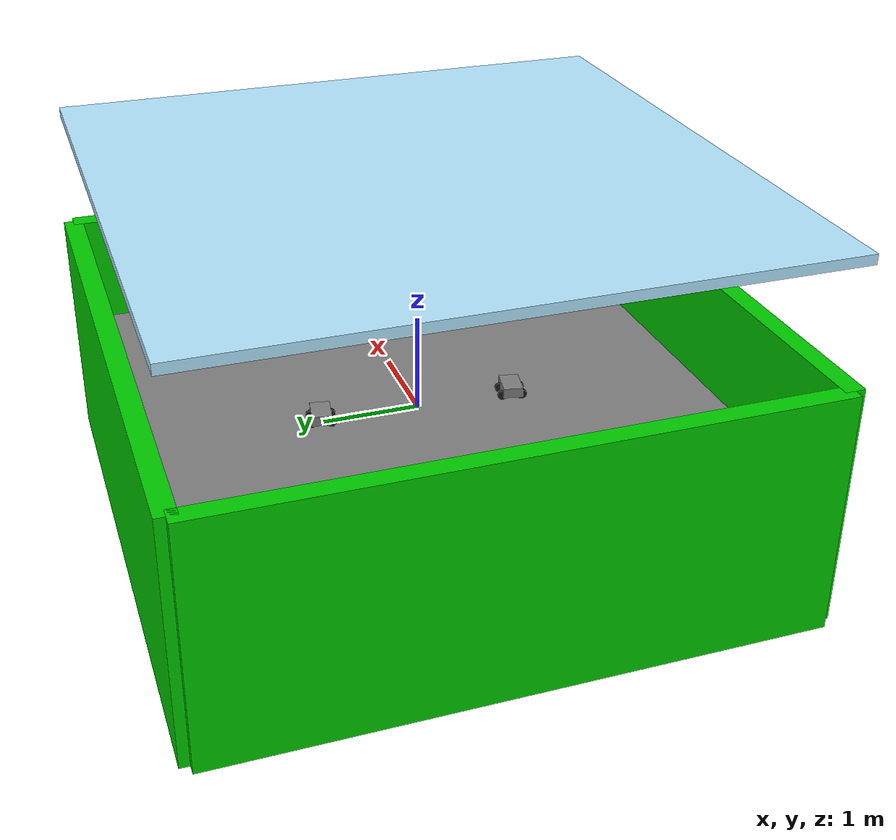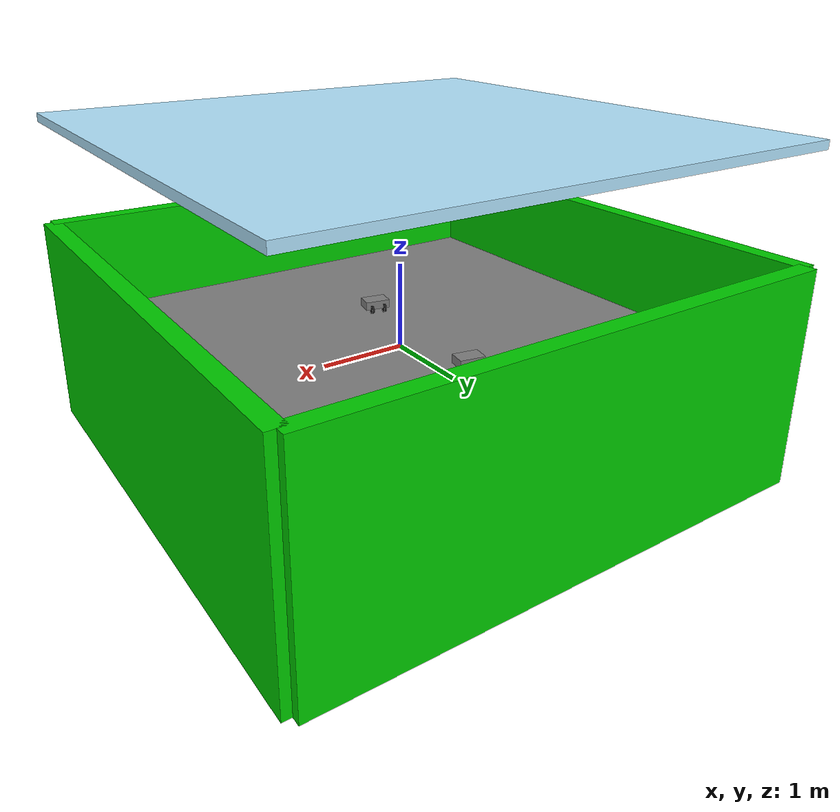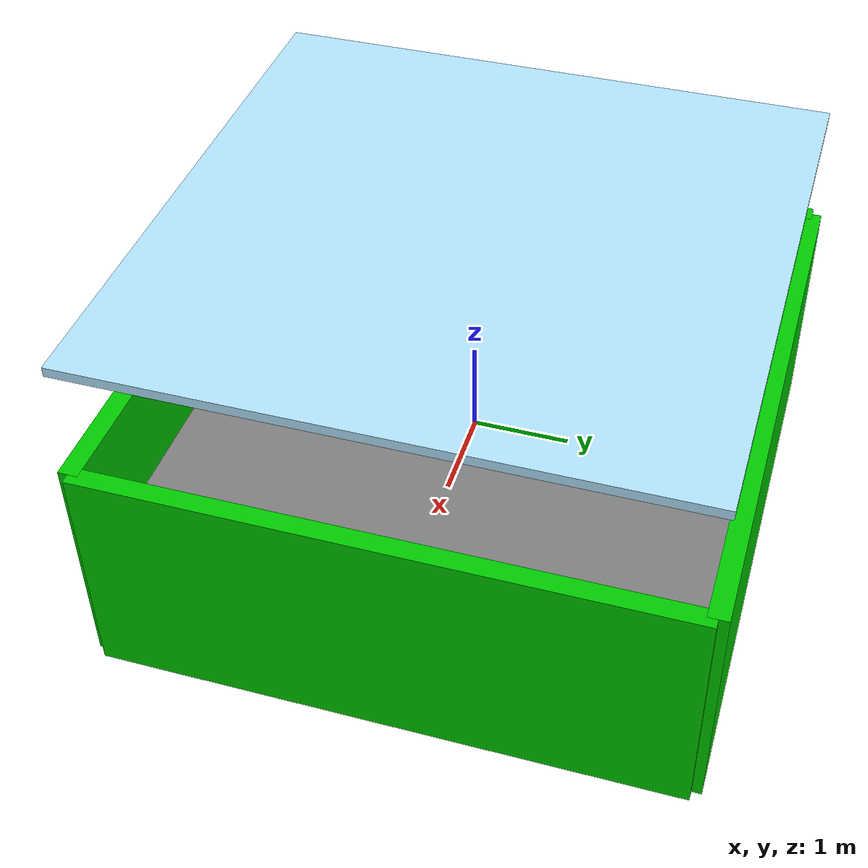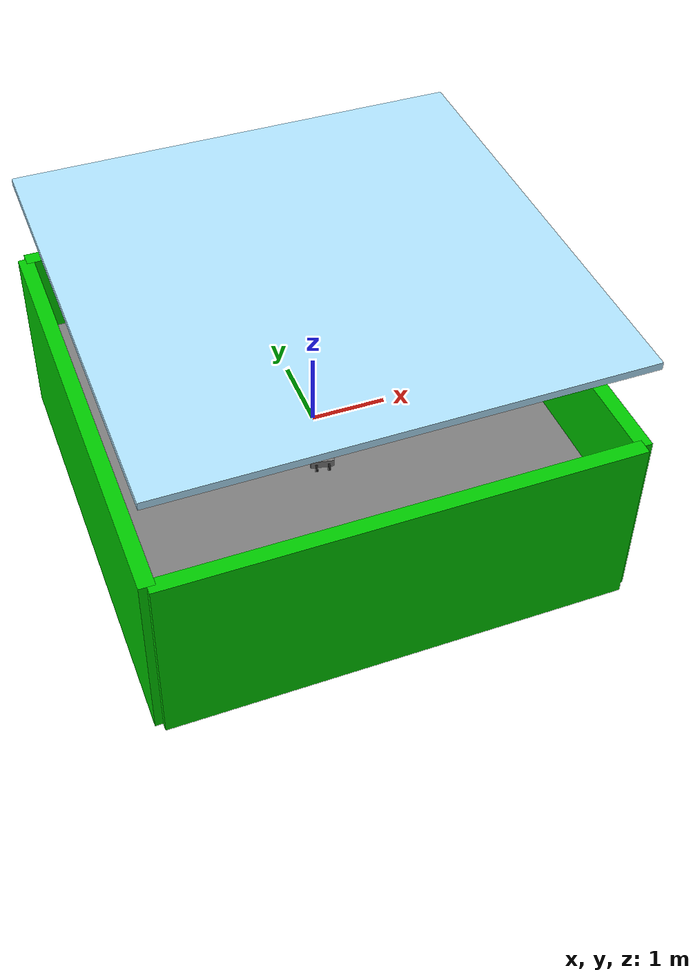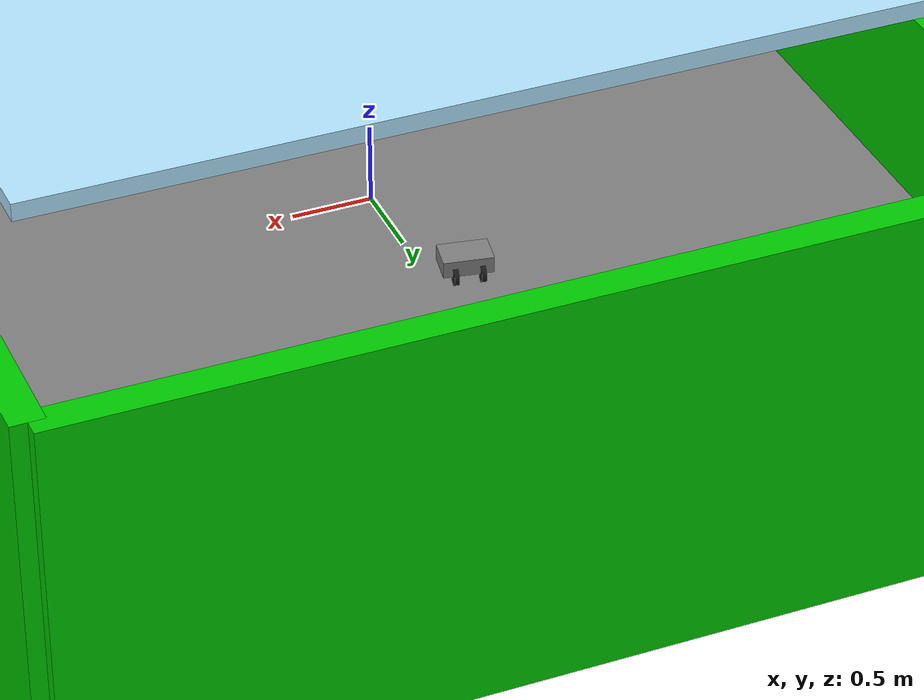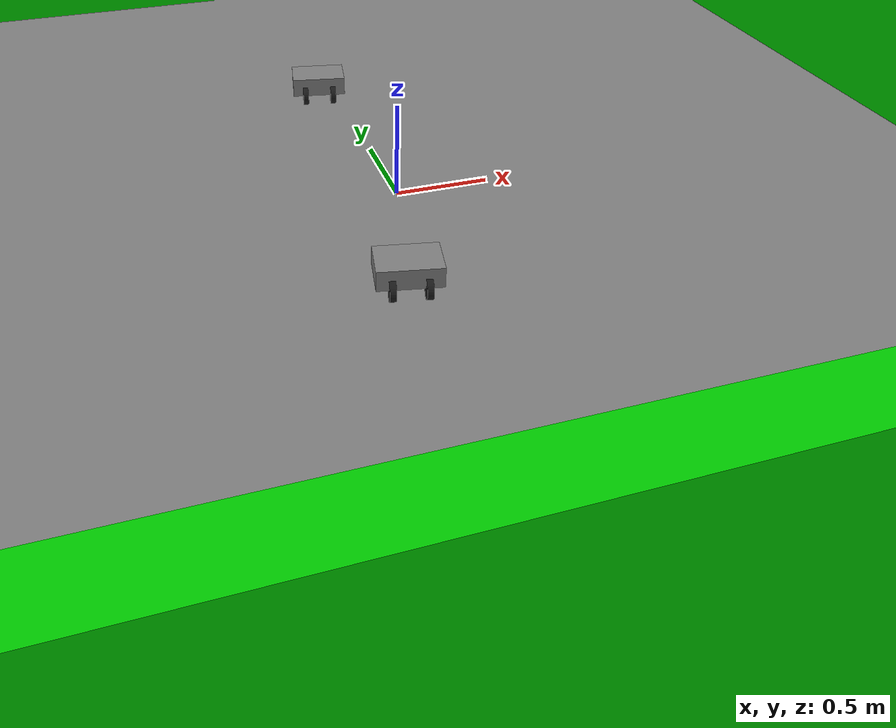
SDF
<sdf version="1.7">
 <world name="myworld">
  <model name="greenhouse">
   <frame name="greenhouse::__model__" attached_to="greenhouse::front_wall">
    <pose relative_to="__model__">0 0 0 0 -0 0</pose>
   </frame>
   <static>1</static>
   <link name="greenhouse::front_wall">
    <pose relative_to="greenhouse::__model__">0 -3 0 0 -0 0</pose>
    <collision name="front_wall_collision"><geometry><box><size>6 0.2 2.5</size></box></geometry></collision>
    <visual name="front_wall_visual">
     <geometry><box><size>6 0.2 2.5</size></box></geometry>
     <material>
      <ambient>0 0.8 0 1</ambient>
      <diffuse>0 0.8 0 1</diffuse>
      <specular>0.1 0.1 0.1 1</specular>
     </material>
    </visual>
   </link>
   <link name="greenhouse::back_wall">
    <pose relative_to="greenhouse::__model__">0 3 0 0 -0 0</pose>
    <collision name="back_wall_collision"><geometry><box><size>6 0.2 2.5</size></box></geometry></collision>
    <visual name="back_wall_visual">
     <geometry><box><size>6 0.2 2.5</size></box></geometry>
     <material>
      <ambient>0 0.8 0 1</ambient>
      <diffuse>0 0.8 0 1</diffuse>
      <specular>0.1 0.1 0.1 1</specular>
     </material>
    </visual>
   </link>
   <link name="greenhouse::left_wall">
    <pose relative_to="greenhouse::__model__">-3 0 0 0 -0 0</pose>
    <collision name="left_wall_collision"><geometry><box><size>0.2 6 2.5</size></box></geometry></collision>
    <visual name="left_wall_visual">
     <geometry><box><size>0.2 6 2.5</size></box></geometry>
     <material>
      <ambient>0 0.8 0 1</ambient>
      <diffuse>0 0.8 0 1</diffuse>
      <specular>0.1 0.1 0.1 1</specular>
     </material>
    </visual>
   </link>
   <link name="greenhouse::right_wall">
    <pose relative_to="greenhouse::__model__">3 0 0 0 -0 0</pose>
    <collision name="right_wall_collision"><geometry><box><size>0.2 6 2.5</size></box></geometry></collision>
    <visual name="right_wall_visual">
     <geometry><box><size>0.2 6 2.5</size></box></geometry>
     <material>
      <ambient>0 0.8 0 1</ambient>
      <diffuse>0 0.8 0 1</diffuse>
      <specular>0.1 0.1 0.1 1</specular>
     </material>
    </visual>
   </link>
   <link name="greenhouse::floor">
    <pose relative_to="greenhouse::__model__">0 0 0 0 -0 0</pose>
    <collision name="floor_collision"><geometry><box><size>6 6 0.2</size></box></geometry></collision>
    <visual name="floor_visual">
     <geometry><box><size>6 6 0.2</size></box></geometry>
     <material>
      <ambient>0.5 0.5 0.5 1</ambient>
      <diffuse>0.5 0.5 0.5 1</diffuse>
      <specular>0.1 0.1 0.1 1</specular>
     </material>
    </visual>
   </link>
   <link name="greenhouse::roof">
    <pose relative_to="greenhouse::__model__">0 0 2.5 0 -0 0</pose>
    <collision name="roof_collision"><geometry><box><size>6 6 0.1</size></box></geometry></collision>
    <visual name="roof_visual">
     <geometry><box><size>6 6 0.1</size></box></geometry>
     <material>
      <ambient>0.7 0.9 1 1</ambient>
      <diffuse>0.7 0.9 1 1</diffuse>
      <specular>0.5 0.5 0.5 1</specular>
      <emissive>0.2 0.2 0.2 1</emissive>
     </material>
    </visual>
   </link>
  </model>
  <model name="robot_1">
   <pose>0.931205 -0.121336 0.099998 -2e-06 -0 -0.18754</pose>
   <frame name="robot::__model__" attached_to="robot::chassis">
    <pose relative_to="__model__">-1 -1 0 0 -0 0</pose>
   </frame>
   <link name="robot::chassis">
    <pose relative_to="robot::__model__">0 0 0.1 0 -0 0</pose>
    <inertial>
     <mass>10</mass>
     <inertia><ixx>0.1</ixx><ixy>0</ixy><ixz>0</ixz><iyy>0.1</iyy><iyz>0</iyz><izz>0.1</izz></inertia>
    </inertial>
    <collision name="chassis_collision"><geometry><box><size>0.3 0.2 0.1</size></box></geometry></collision>
    <visual name="chassis_visual">
     <geometry><box><size>0.3 0.2 0.1</size></box></geometry>
     <material>
      <ambient>0.3 0.3 0.3 1</ambient>
      <diffuse>0.5 0.5 0.5 1</diffuse>
      <specular>0.2 0.2 0.2 1</specular>
     </material>
    </visual>
   </link>
   <link name="robot::caster_wheel">
    <pose relative_to="robot::__model__">0.1 0 0.05 0 -0 0</pose>
    <inertial>
     <mass>0.5</mass>
     <inertia><ixx>0.01</ixx><ixy>0</ixy><ixz>0</ixz><iyy>0.01</iyy><iyz>0</iyz><izz>0.01</izz></inertia>
    </inertial>
    <collision name="caster_collision"><geometry><sphere><radius>0.03</radius></sphere></geometry></collision>
    <visual name="caster_visual">
     <geometry><sphere><radius>0.03</radius></sphere></geometry>
     <material>
      <ambient>0.2 0.2 0.2 1</ambient>
      <diffuse>0.3 0.3 0.3 1</diffuse>
      <specular>0.1 0.1 0.1 1</specular>
     </material>
    </visual>
   </link>
   <link name="robot::left_front_wheel">
    <pose relative_to="robot::__model__">0.08 0.1 0.05 3.14159 1.57079 3.14159</pose>
    <inertial>
     <mass>1</mass>
     <inertia><ixx>0.01</ixx><ixy>0</ixy><ixz>0</ixz><iyy>0.01</iyy><iyz>0</iyz><izz>0.01</izz></inertia>
    </inertial>
    <collision name="left_front_wheel_collision">
     <geometry><cylinder><radius>0.05</radius><length>0.03</length></cylinder></geometry>
    </collision>
    <visual name="left_front_wheel_visual">
     <geometry><cylinder><radius>0.05</radius><length>0.03</length></cylinder></geometry>
     <material>
      <ambient>0 0 0 1</ambient>
      <diffuse>0.1 0.1 0.1 1</diffuse>
      <specular>0.05 0.05 0.05 1</specular>
     </material>
    </visual>
   </link>
   <link name="robot::right_front_wheel">
    <pose relative_to="robot::__model__">0.08 -0.1 0.05 3.14159 1.57079 3.14159</pose>
    <inertial>
     <mass>1</mass>
     <inertia><ixx>0.01</ixx><ixy>0</ixy><ixz>0</ixz><iyy>0.01</iyy><iyz>0</iyz><izz>0.01</izz></inertia>
    </inertial>
    <collision name="right_front_wheel_collision">
     <geometry><cylinder><radius>0.05</radius><length>0.03</length></cylinder></geometry>
    </collision>
    <visual name="right_front_wheel_visual">
     <geometry><cylinder><radius>0.05</radius><length>0.03</length></cylinder></geometry>
     <material>
      <ambient>0 0 0 1</ambient>
      <diffuse>0.1 0.1 0.1 1</diffuse>
      <specular>0.05 0.05 0.05 1</specular>
     </material>
    </visual>
   </link>
   <link name="robot::left_rear_wheel">
    <pose relative_to="robot::__model__">-0.08 0.1 0.05 3.14159 1.57079 3.14159</pose>
    <inertial>
     <mass>1</mass>
     <inertia><ixx>0.01</ixx><ixy>0</ixy><ixz>0</ixz><iyy>0.01</iyy><iyz>0</iyz><izz>0.01</izz></inertia>
    </inertial>
    <collision name="left_rear_wheel_collision">
     <geometry><cylinder><radius>0.05</radius><length>0.03</length></cylinder></geometry>
    </collision>
    <visual name="left_rear_wheel_visual">
     <geometry><cylinder><radius>0.05</radius><length>0.03</length></cylinder></geometry>
     <material>
      <ambient>0 0 0 1</ambient>
      <diffuse>0.1 0.1 0.1 1</diffuse>
      <specular>0.05 0.05 0.05 1</specular>
     </material>
    </visual>
   </link>
   <link name="robot::right_rear_wheel">
    <pose relative_to="robot::__model__">-0.08 -0.1 0.05 3.14159 1.57079 3.14159</pose>
    <inertial>
     <mass>1</mass>
     <inertia><ixx>0.01</ixx><ixy>0</ixy><ixz>0</ixz><iyy>0.01</iyy><iyz>0</iyz><izz>0.01</izz></inertia>
    </inertial>
    <collision name="right_rear_wheel_collision">
     <geometry><cylinder><radius>0.05</radius><length>0.03</length></cylinder></geometry>
    </collision>
    <visual name="right_rear_wheel_visual">
     <geometry><cylinder><radius>0.05</radius><length>0.03</length></cylinder></geometry>
     <material>
      <ambient>0 0 0 1</ambient>
      <diffuse>0.1 0.1 0.1 1</diffuse>
      <specular>0.05 0.05 0.05 1</specular>
     </material>
    </visual>
   </link>
   <joint name="robot::caster_wheel_joint" type="ball">
    <parent>robot::chassis</parent>
    <child>robot::caster_wheel</child>
   </joint>
   <joint name="robot::left_front_wheel_joint" type="revolute">
    <parent>robot::chassis</parent>
    <child>robot::left_front_wheel</child>
    <axis>
     <xyz>0 1 0</xyz>
     <limit><lower>-1e+16</lower><upper>1e+16</upper></limit>
     <dynamics><spring_reference>0</spring_reference><spring_stiffness>0</spring_stiffness></dynamics>
    </axis>
   </joint>
   <joint name="robot::right_front_wheel_joint" type="revolute">
    <parent>robot::chassis</parent>
    <child>robot::right_front_wheel</child>
    <axis>
     <xyz>0 1 0</xyz>
     <limit><lower>-1e+16</lower><upper>1e+16</upper></limit>
     <dynamics><spring_reference>0</spring_reference><spring_stiffness>0</spring_stiffness></dynamics>
    </axis>
   </joint>
   <joint name="robot::left_rear_wheel_joint" type="revolute">
    <parent>robot::chassis</parent>
    <child>robot::left_rear_wheel</child>
    <axis>
     <xyz>0 1 0</xyz>
     <limit><lower>-1e+16</lower><upper>1e+16</upper></limit>
     <dynamics><spring_reference>0</spring_reference><spring_stiffness>0</spring_stiffness></dynamics>
    </axis>
   </joint>
   <joint name="robot::right_rear_wheel_joint" type="revolute">
    <parent>robot::chassis</parent>
    <child>robot::right_rear_wheel</child>
    <axis>
     <xyz>0 1 0</xyz>
     <limit><lower>-1e+16</lower><upper>1e+16</upper></limit>
     <dynamics><spring_reference>0</spring_reference><spring_stiffness>0</spring_stiffness></dynamics>
    </axis>
   </joint>
  </model>
  <model name="robot_2">
   <pose>-1.32253 0.26258 0.100002 -2e-06 -0 -0.178467</pose>
   <frame name="robot::__model__" attached_to="robot::chassis">
    <pose relative_to="__model__">1 1 0 0 -0 0</pose>
   </frame>
   <link name="robot::chassis">
    <pose relative_to="robot::__model__">0 0 0.1 0 -0 0</pose>
    <inertial>
     <mass>10</mass>
     <inertia><ixx>0.1</ixx><ixy>0</ixy><ixz>0</ixz><iyy>0.1</iyy><iyz>0</iyz><izz>0.1</izz></inertia>
    </inertial>
    <collision name="chassis_collision"><geometry><box><size>0.3 0.2 0.1</size></box></geometry></collision>
    <visual name="chassis_visual">
     <geometry><box><size>0.3 0.2 0.1</size></box></geometry>
     <material>
      <ambient>0.3 0.3 0.3 1</ambient>
      <diffuse>0.5 0.5 0.5 1</diffuse>
      <specular>0.2 0.2 0.2 1</specular>
     </material>
    </visual>
   </link>
   <link name="robot::caster_wheel">
    <pose relative_to="robot::__model__">0.1 0 0.05 0 -0 0</pose>
    <inertial>
     <mass>0.5</mass>
     <inertia><ixx>0.01</ixx><ixy>0</ixy><ixz>0</ixz><iyy>0.01</iyy><iyz>0</iyz><izz>0.01</izz></inertia>
    </inertial>
    <collision name="caster_collision"><geometry><sphere><radius>0.03</radius></sphere></geometry></collision>
    <visual name="caster_visual">
     <geometry><sphere><radius>0.03</radius></sphere></geometry>
     <material>
      <ambient>0.2 0.2 0.2 1</ambient>
      <diffuse>0.3 0.3 0.3 1</diffuse>
      <specular>0.1 0.1 0.1 1</specular>
     </material>
    </visual>
   </link>
   <link name="robot::left_front_wheel">
    <pose relative_to="robot::__model__">0.08 0.1 0.05 3.14159 1.57079 3.14159</pose>
    <inertial>
     <mass>1</mass>
     <inertia><ixx>0.01</ixx><ixy>0</ixy><ixz>0</ixz><iyy>0.01</iyy><iyz>0</iyz><izz>0.01</izz></inertia>
    </inertial>
    <collision name="left_front_wheel_collision">
     <geometry><cylinder><radius>0.05</radius><length>0.03</length></cylinder></geometry>
    </collision>
    <visual name="left_front_wheel_visual">
     <geometry><cylinder><radius>0.05</radius><length>0.03</length></cylinder></geometry>
     <material>
      <ambient>0 0 0 1</ambient>
      <diffuse>0.1 0.1 0.1 1</diffuse>
      <specular>0.05 0.05 0.05 1</specular>
     </material>
    </visual>
   </link>
   <link name="robot::right_front_wheel">
    <pose relative_to="robot::__model__">0.08 -0.1 0.05 3.14159 1.57079 3.14159</pose>
    <inertial>
     <mass>1</mass>
     <inertia><ixx>0.01</ixx><ixy>0</ixy><ixz>0</ixz><iyy>0.01</iyy><iyz>0</iyz><izz>0.01</izz></inertia>
    </inertial>
    <collision name="right_front_wheel_collision">
     <geometry><cylinder><radius>0.05</radius><length>0.03</length></cylinder></geometry>
    </collision>
    <visual name="right_front_wheel_visual">
     <geometry><cylinder><radius>0.05</radius><length>0.03</length></cylinder></geometry>
     <material>
      <ambient>0 0 0 1</ambient>
      <diffuse>0.1 0.1 0.1 1</diffuse>
      <specular>0.05 0.05 0.05 1</specular>
     </material>
    </visual>
   </link>
   <link name="robot::left_rear_wheel">
    <pose relative_to="robot::__model__">-0.08 0.1 0.05 3.14159 1.57079 3.14159</pose>
    <inertial>
     <mass>1</mass>
     <inertia><ixx>0.01</ixx><ixy>0</ixy><ixz>0</ixz><iyy>0.01</iyy><iyz>0</iyz><izz>0.01</izz></inertia>
    </inertial>
    <collision name="left_rear_wheel_collision">
     <geometry><cylinder><radius>0.05</radius><length>0.03</length></cylinder></geometry>
    </collision>
    <visual name="left_rear_wheel_visual">
     <geometry><cylinder><radius>0.05</radius><length>0.03</length></cylinder></geometry>
     <material>
      <ambient>0 0 0 1</ambient>
      <diffuse>0.1 0.1 0.1 1</diffuse>
      <specular>0.05 0.05 0.05 1</specular>
     </material>
    </visual>
   </link>
   <link name="robot::right_rear_wheel">
    <pose relative_to="robot::__model__">-0.08 -0.1 0.05 3.14159 1.57079 3.14159</pose>
    <inertial>
     <mass>1</mass>
     <inertia><ixx>0.01</ixx><ixy>0</ixy><ixz>0</ixz><iyy>0.01</iyy><iyz>0</iyz><izz>0.01</izz></inertia>
    </inertial>
    <collision name="right_rear_wheel_collision">
     <geometry><cylinder><radius>0.05</radius><length>0.03</length></cylinder></geometry>
    </collision>
    <visual name="right_rear_wheel_visual">
     <geometry><cylinder><radius>0.05</radius><length>0.03</length></cylinder></geometry>
     <material>
      <ambient>0 0 0 1</ambient>
      <diffuse>0.1 0.1 0.1 1</diffuse>
      <specular>0.05 0.05 0.05 1</specular>
     </material>
    </visual>
   </link>
   <joint name="robot::caster_wheel_joint" type="ball">
    <parent>robot::chassis</parent>
    <child>robot::caster_wheel</child>
   </joint>
   <joint name="robot::left_front_wheel_joint" type="revolute">
    <parent>robot::chassis</parent>
    <child>robot::left_front_wheel</child>
    <axis>
     <xyz>0 1 0</xyz>
     <limit><lower>-1e+16</lower><upper>1e+16</upper></limit>
     <dynamics><spring_reference>0</spring_reference><spring_stiffness>0</spring_stiffness></dynamics>
    </axis>
   </joint>
   <joint name="robot::right_front_wheel_joint" type="revolute">
    <parent>robot::chassis</parent>
    <child>robot::right_front_wheel</child>
    <axis>
     <xyz>0 1 0</xyz>
     <limit><lower>-1e+16</lower><upper>1e+16</upper></limit>
     <dynamics><spring_reference>0</spring_reference><spring_stiffness>0</spring_stiffness></dynamics>
    </axis>
   </joint>
   <joint name="robot::left_rear_wheel_joint" type="revolute">
    <parent>robot::chassis</parent>
    <child>robot::left_rear_wheel</child>
    <axis>
     <xyz>0 1 0</xyz>
     <limit><lower>-1e+16</lower><upper>1e+16</upper></limit>
     <dynamics><spring_reference>0</spring_reference><spring_stiffness>0</spring_stiffness></dynamics>
    </axis>
   </joint>
   <joint name="robot::right_rear_wheel_joint" type="revolute">
    <parent>robot::chassis</parent>
    <child>robot::right_rear_wheel</child>
    <axis>
     <xyz>0 1 0</xyz>
     <limit><lower>-1e+16</lower><upper>1e+16</upper></limit>
     <dynamics><spring_reference>0</spring_reference><spring_stiffness>0</spring_stiffness></dynamics>
    </axis>
   </joint>
  </model>
  <plugin name="hello_world_plugin" filename="libhello.so"/>
  <gravity>0 0 -9.8</gravity>
  <magnetic_field>6e-06 2.3e-05 -4.2e-05</magnetic_field>
  <atmosphere type="adiabatic"/>
  <physics type="ode">
   <max_step_size>0.001</max_step_size>
   <real_time_factor>1</real_time_factor>
   <real_time_update_rate>1000</real_time_update_rate>
  </physics>
  <scene><ambient>0.4 0.4 0.4 1</ambient><background>0.7 0.7 0.7 1</background><shadows>1</shadows></scene>
  <spherical_coordinates>
   <surface_model>EARTH_WGS84</surface_model>
   <latitude_deg>0</latitude_deg>
   <longitude_deg>0</longitude_deg>
   <elevation>0</elevation>
   <heading_deg>0</heading_deg>
  </spherical_coordinates>
  <light name="user_directional_light_0" type="directional">
   <pose>5.98576 1.89907 1 0 -0 0</pose>
   <diffuse>0.5 0.5 0.5 1</diffuse>
   <specular>0.1 0.1 0.1 1</specular>
   <direction>0.1 0.1 -0.9</direction>
   <attenuation>
    <range>20</range>
    <constant>0.5</constant>
    <linear>0.01</linear>
    <quadratic>0.001</quadratic>
   </attenuation>
  </light>
  <light name="user_directional_light_1" type="directional">
   <pose>0.092436 1.84075 1 0 -0 0</pose>
   <diffuse>0.5 0.5 0.5 1</diffuse>
   <specular>0.1 0.1 0.1 1</specular>
   <direction>0.1 0.1 -0.9</direction>
   <attenuation>
    <range>20</range>
    <constant>0.5</constant>
    <linear>0.01</linear>
    <quadratic>0.001</quadratic>
   </attenuation>
  </light>
  <light name="user_point_light_0" type="point">
   <pose>0.500876 0.028798 1 0 -0 0</pose>
   <diffuse>0.5 0.5 0.5 1</diffuse>
   <specular>0.1 0.1 0.1 1</specular>
   <attenuation>
    <range>20</range>
    <constant>0.5</constant>
    <linear>0.01</linear>
    <quadratic>0.001</quadratic>
   </attenuation>
   <cast_shadows>0</cast_shadows>
   <direction>0 0 -1</direction>
  </light>
 </world>
</sdf>
